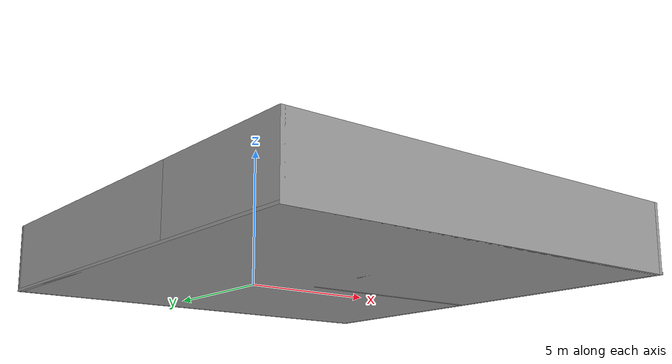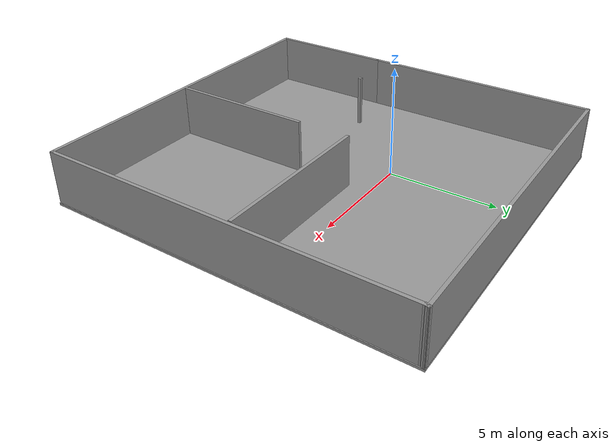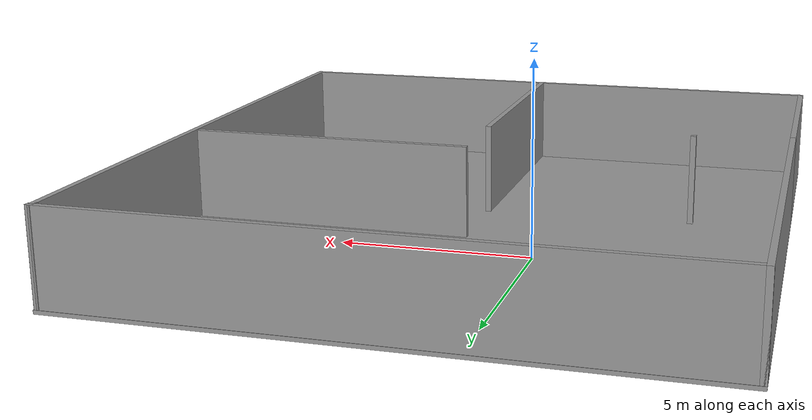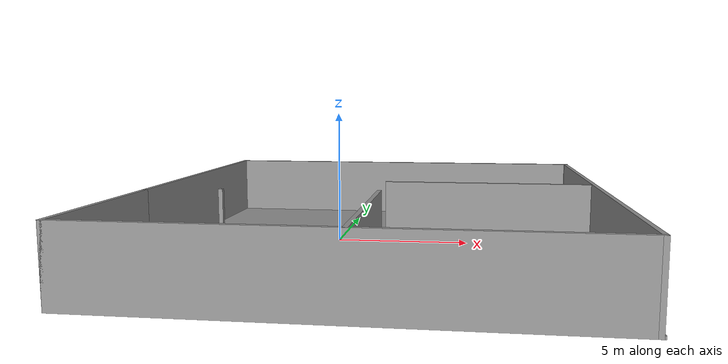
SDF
<?xml version='1.0'?>
<sdf version='1.6'>
  <model name='mars_student1'>
    <pose frame=''>1.80325 -1.76127 0 0 -0 0</pose>
    <link name='Floor_0'>
      <collision name='Floor_0_Collision'>
        <geometry>
          <box>
            <size>15.7928 16.8634 0.1</size>
          </box>
        </geometry>
        <pose frame=''>0 0 0.05 0 -0 0</pose>
      </collision>
      <visual name='Floor_0_Visual'>
        <pose frame=''>0 0 0.05 0 -0 0</pose>
        <geometry>
          <box>
            <size>15.7928 16.8634 0.1</size>
          </box>
        </geometry>
        <material>
          <script>
            <uri>file://media/materials/scripts/gazebo.material</uri>
            <name>Gazebo/Grey</name>
          </script>
          <ambient>1 1 1 1</ambient>
        </material>
        <meta>
          <layer>0</layer>
        </meta>
      </visual>
      <pose frame=''>-0 0 0 0 -0 0</pose>
    </link>
    <link name='Wall_12'>
      <collision name='Wall_12_Collision'>
        <geometry>
          <box>
            <size>11 0.15 2.5</size>
          </box>
        </geometry>
        <pose frame=''>0 0 1.25 0 -0 0</pose>
      </collision>
      <visual name='Wall_12_Visual'>
        <pose frame=''>0 0 1.25 0 -0 0</pose>
        <geometry>
          <box>
            <size>11 0.15 2.5</size>
          </box>
        </geometry>
        <material>
          <script>
            <uri>file://media/materials/scripts/gazebo.material</uri>
            <name>Gazebo/Grey</name>
          </script>
          <ambient>1 1 1 1</ambient>
        </material>
        <meta>
          <layer>0</layer>
        </meta>
      </visual>
      <pose frame=''>-7.82136 2.91828 0 0 -0 -1.5708</pose>
    </link>
    <link name='Wall_13'>
      <collision name='Wall_13_Collision'>
        <geometry>
          <box>
            <size>6 0.15 2.5</size>
          </box>
        </geometry>
        <pose frame=''>0 0 1.25 0 -0 0</pose>
      </collision>
      <visual name='Wall_13_Visual'>
        <pose frame=''>0 0 1.25 0 -0 0</pose>
        <geometry>
          <box>
            <size>6 0.15 2.5</size>
          </box>
        </geometry>
        <material>
          <script>
            <uri>file://media/materials/scripts/gazebo.material</uri>
            <name>Gazebo/Grey</name>
          </script>
          <ambient>1 1 1 1</ambient>
        </material>
        <meta>
          <layer>0</layer>
        </meta>
      </visual>
      <pose frame=''>-7.82136 -5.43172 0 0 -0 -1.5708</pose>
    </link>
    <link name='Wall_14'>
      <collision name='Wall_14_Collision'>
        <geometry>
          <box>
            <size>15.75 0.15 2.5</size>
          </box>
        </geometry>
        <pose frame=''>0 0 1.25 0 -0 0</pose>
      </collision>
      <visual name='Wall_14_Visual'>
        <pose frame=''>0 0 1.25 0 -0 0</pose>
        <geometry>
          <box>
            <size>15.75 0.15 2.5</size>
          </box>
        </geometry>
        <material>
          <script>
            <uri>file://media/materials/scripts/gazebo.material</uri>
            <name>Gazebo/Grey</name>
          </script>
          <ambient>1 1 1 1</ambient>
        </material>
        <meta>
          <layer>0</layer>
        </meta>
      </visual>
      <pose frame=''>-0.021361 -8.35672 0 0 -0 0</pose>
    </link>
    <link name='Wall_15'>
      <collision name='Wall_15_Collision'>
        <geometry>
          <box>
            <size>16.75 0.15 2.5</size>
          </box>
        </geometry>
        <pose frame=''>0 0 1.25 0 -0 0</pose>
      </collision>
      <visual name='Wall_15_Visual'>
        <pose frame=''>0 0 1.25 0 -0 0</pose>
        <geometry>
          <box>
            <size>16.75 0.15 2.5</size>
          </box>
        </geometry>
        <material>
          <script>
            <uri>file://media/materials/scripts/gazebo.material</uri>
            <name>Gazebo/Grey</name>
          </script>
          <ambient>1 1 1 1</ambient>
        </material>
        <meta>
          <layer>0</layer>
        </meta>
      </visual>
      <pose frame=''>7.77864 -0.056724 0 0 -0 1.5708</pose>
    </link>
    <link name='Wall_16'>
      <collision name='Wall_16_Collision'>
        <geometry>
          <box>
            <size>0.15 0.15 2.5</size>
          </box>
        </geometry>
        <pose frame=''>0 0 1.25 0 -0 0</pose>
      </collision>
      <visual name='Wall_16_Visual'>
        <pose frame=''>0 0 1.25 0 -0 0</pose>
        <geometry>
          <box>
            <size>0.15 0.15 2.5</size>
          </box>
        </geometry>
        <material>
          <script>
            <uri>file://media/materials/scripts/gazebo.material</uri>
            <name>Gazebo/Grey</name>
          </script>
          <ambient>1 1 1 1</ambient>
        </material>
        <meta>
          <layer>0</layer>
        </meta>
      </visual>
      <pose frame=''>7.77864 8.24328 0 0 -0 0</pose>
    </link>
    <link name='Wall_17'>
      <collision name='Wall_17_Collision'>
        <geometry>
          <box>
            <size>0.15 0.15 2.5</size>
          </box>
        </geometry>
        <pose frame=''>0 0 1.25 0 -0 0</pose>
      </collision>
      <visual name='Wall_17_Visual'>
        <pose frame=''>0 0 1.25 0 -0 0</pose>
        <geometry>
          <box>
            <size>0.15 0.15 2.5</size>
          </box>
        </geometry>
        <material>
          <script>
            <uri>file://media/materials/scripts/gazebo.material</uri>
            <name>Gazebo/Grey</name>
          </script>
          <ambient>1 1 1 1</ambient>
        </material>
        <meta>
          <layer>0</layer>
        </meta>
      </visual>
      <pose frame=''>7.77864 8.24328 0 0 -0 0</pose>
    </link>
    <link name='Wall_18'>
      <collision name='Wall_18_Collision'>
        <geometry>
          <box>
            <size>0.25 0.15 2.5</size>
          </box>
        </geometry>
        <pose frame=''>0 0 1.25 0 -0 0</pose>
      </collision>
      <visual name='Wall_18_Visual'>
        <pose frame=''>0 0 1.25 0 -0 0</pose>
        <geometry>
          <box>
            <size>0.25 0.15 2.5</size>
          </box>
        </geometry>
        <material>
          <script>
            <uri>file://media/materials/scripts/gazebo.material</uri>
            <name>Gazebo/Grey</name>
          </script>
          <ambient>1 1 1 1</ambient>
        </material>
        <meta>
          <layer>0</layer>
        </meta>
      </visual>
      <pose frame=''>7.79158 8.29157 0 0 -0 1.309</pose>
    </link>
    <link name='Wall_19'>
      <collision name='Wall_19_Collision'>
        <geometry>
          <box>
            <size>15.7759 0.15 2.5</size>
          </box>
        </geometry>
        <pose frame=''>0 0 1.25 0 -0 0</pose>
      </collision>
      <visual name='Wall_19_Visual'>
        <pose frame=''>0 0 1.25 0 -0 0</pose>
        <geometry>
          <box>
            <size>15.7759 0.15 2.5</size>
          </box>
        </geometry>
        <material>
          <script>
            <uri>file://media/materials/scripts/gazebo.material</uri>
            <name>Gazebo/Grey</name>
          </script>
          <ambient>1 1 1 1</ambient>
        </material>
        <meta>
          <layer>0</layer>
        </meta>
      </visual>
      <pose frame=''>-0.00842 8.34157 0 0 -0 3.14138</pose>
    </link>
    <link name='Wall_20'>
      <collision name='Wall_20_Collision'>
        <geometry>
          <box>
            <size>0.15 0.15 2.5</size>
          </box>
        </geometry>
        <pose frame=''>0 0 1.25 0 -0 0</pose>
      </collision>
      <visual name='Wall_20_Visual'>
        <pose frame=''>0 0 1.25 0 -0 0</pose>
        <geometry>
          <box>
            <size>0.15 0.15 2.5</size>
          </box>
        </geometry>
        <material>
          <script>
            <uri>file://media/materials/scripts/gazebo.material</uri>
            <name>Gazebo/Grey</name>
          </script>
          <ambient>1 1 1 1</ambient>
        </material>
        <meta>
          <layer>0</layer>
        </meta>
      </visual>
      <pose frame=''>-7.82136 8.34328 0 0 -0 0</pose>
    </link>
    <link name='Wall_21'>
      <collision name='Wall_21_Collision'>
        <geometry>
          <box>
            <size>0.15 0.15 2.5</size>
          </box>
        </geometry>
        <pose frame=''>0 0 1.25 0 -0 0</pose>
      </collision>
      <visual name='Wall_21_Visual'>
        <pose frame=''>0 0 1.25 0 -0 0</pose>
        <geometry>
          <box>
            <size>0.15 0.15 2.5</size>
          </box>
        </geometry>
        <material>
          <script>
            <uri>file://media/materials/scripts/gazebo.material</uri>
            <name>Gazebo/Grey</name>
          </script>
          <ambient>1 1 1 1</ambient>
        </material>
        <meta>
          <layer>0</layer>
        </meta>
      </visual>
      <pose frame=''>-7.82136 8.34328 0 0 -0 0</pose>
    </link>
    <link name='Wall_23'>
      <collision name='Wall_23_Collision'>
        <geometry>
          <box>
            <size>7.5 0.15 2.5</size>
          </box>
        </geometry>
        <pose frame=''>0 0 1.25 0 -0 0</pose>
      </collision>
      <visual name='Wall_23_Visual'>
        <pose frame=''>0 0 1.25 0 -0 0</pose>
        <geometry>
          <box>
            <size>7.5 0.15 2.5</size>
          </box>
        </geometry>
        <material>
          <script>
            <uri>file://media/materials/scripts/gazebo.material</uri>
            <name>Gazebo/Grey</name>
          </script>
          <ambient>1 1 1 1</ambient>
        </material>
        <meta>
          <layer>0</layer>
        </meta>
      </visual>
      <pose frame=''>3.90379 0.743369 0 0 -0 0</pose>
    </link>
    <link name='Wall_25'>
      <collision name='Wall_25_Collision'>
        <geometry>
          <box>
            <size>6.75 0.15 2.5</size>
          </box>
        </geometry>
        <pose frame=''>0 0 1.25 0 -0 0</pose>
      </collision>
      <visual name='Wall_25_Visual'>
        <pose frame=''>0 0 1.25 0 -0 0</pose>
        <geometry>
          <box>
            <size>6.75 0.15 2.5</size>
          </box>
        </geometry>
        <material>
          <script>
            <uri>file://media/materials/scripts/gazebo.material</uri>
            <name>Gazebo/Grey</name>
          </script>
          <ambient>1 1 1 1</ambient>
        </material>
        <meta>
          <layer>0</layer>
        </meta>
      </visual>
      <pose frame=''>0.228786 -5.04684 0 0 -0 -1.5708</pose>
    </link>
    <link name='Wall_8'>
      <collision name='Wall_8_Collision'>
        <geometry>
          <box>
            <size>0.15 0.15 2.5</size>
          </box>
        </geometry>
        <pose frame=''>0 0 1.25 0 -0 0</pose>
      </collision>
      <visual name='Wall_8_Visual'>
        <pose frame=''>0 0 1.25 0 -0 0</pose>
        <geometry>
          <box>
            <size>0.15 0.15 2.5</size>
          </box>
        </geometry>
        <material>
          <script>
            <uri>file://media/materials/scripts/gazebo.material</uri>
            <name>Gazebo/Grey</name>
          </script>
          <ambient>1 1 1 1</ambient>
        </material>
        <meta>
          <layer>0</layer>
        </meta>
      </visual>
      <pose frame=''>-5.28325 -1.98873 0 0 -0 0</pose>
    </link>
    <static>1</static>
  </model>
</sdf>
